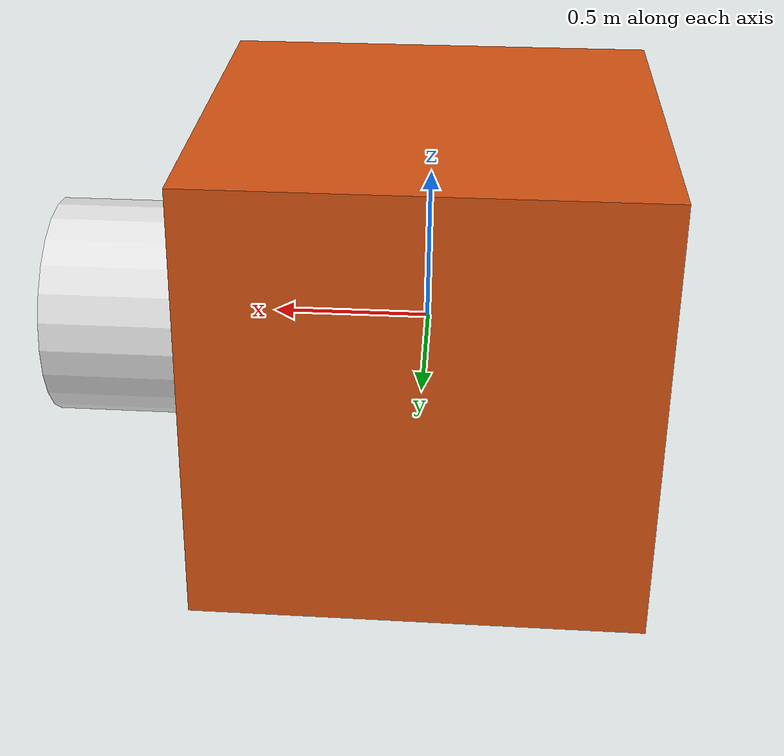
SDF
<?xml version="1.0" ?>
<sdf version="1.6">
  <model name="chaser">
    <static>false</static>
    <link name="body">
      <inertial><mass>1</mass><inertia><ixx>1</ixx><iyy>1</iyy><izz>1</izz></inertia></inertial>
      <visual name="bus"><geometry><box><size>1.4 1.4 1.4</size></box></geometry><material><ambient>0.8 0.25 0.05 1</ambient><diffuse>0.9 0.35 0.08 1</diffuse></material></visual>
      <visual name="nose"><pose>0.95 0 0 0 1.5708 0</pose><geometry><cylinder><radius>0.35</radius><length>0.5</length></cylinder></geometry><material><ambient>0.95 0.95 0.95 1</ambient><diffuse>0.95 0.95 0.95 1</diffuse></material></visual>
    </link>
  </model>
</sdf>
